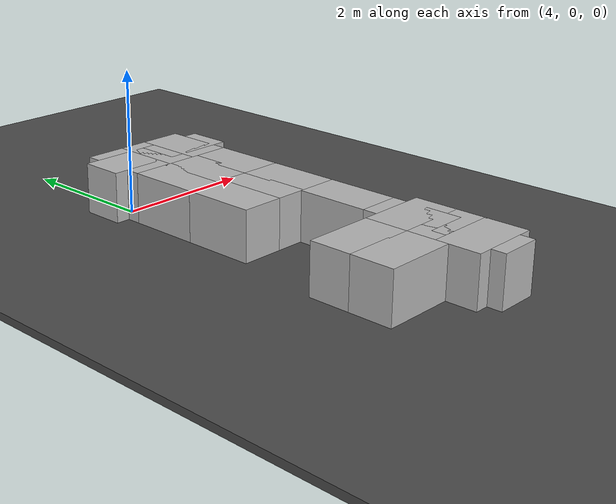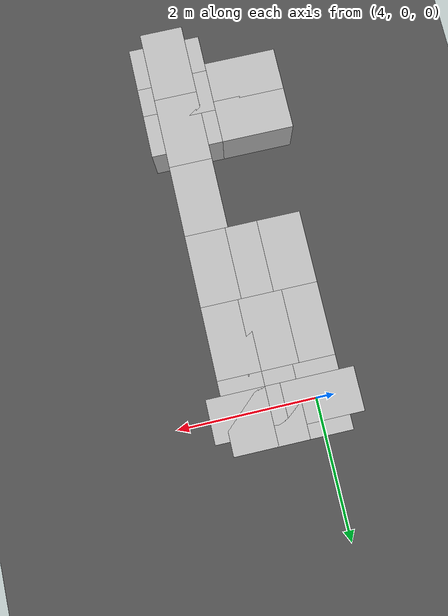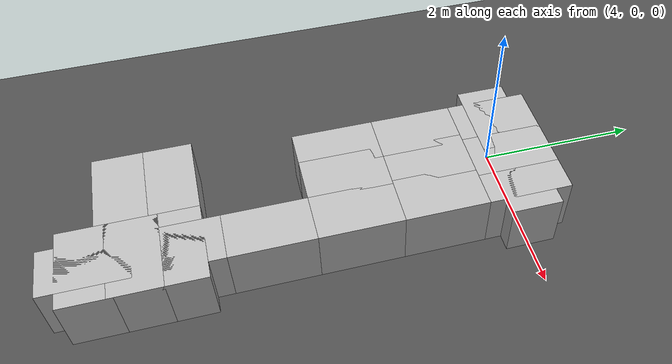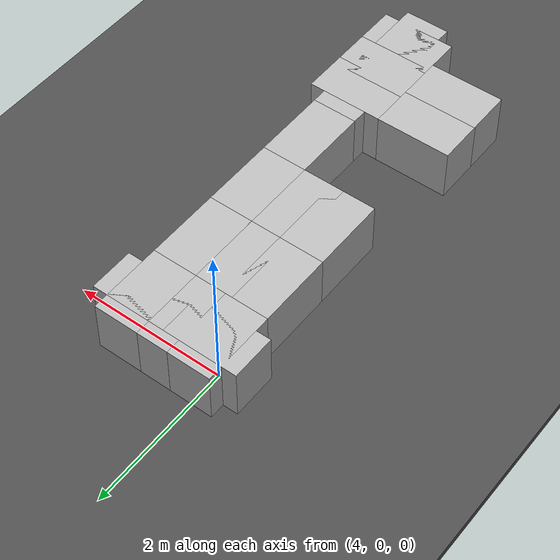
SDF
<sdf version="1.4">
 <world name="default">
  <model name="ground_plane">
   <static>1</static>
   <link name="link">
    <collision name="collision">
     <geometry><plane><normal>0 0 1</normal><size>100 100</size></plane></geometry>
     <surface><friction><ode><mu>100</mu><mu2>50</mu2></ode></friction></surface>
    </collision>
    <visual name="visual">
     <cast_shadows>0</cast_shadows>
     <geometry><plane><normal>0 0 1</normal><size>100 100</size></plane></geometry>
     <material>
      <script><uri>file://media/materials/scripts/gazebo.material</uri><name>Gazebo/Grey</name></script>
     </material>
    </visual>
    <velocity_decay><linear>0</linear><angular>0</angular></velocity_decay>
   </link>
  </model>
  <model name="wall_3">
   <static>1</static>
   <link name="link">
    <pose>0 0 0.25 0 -0 0</pose>
    <collision name="collision"><geometry><box><size>1 0.6 1</size></box></geometry></collision>
    <visual name="visual">
     <geometry>
      <mesh><uri>model://brick_box_3x1x3/meshes/simple_box.dae</uri><scale>1 0.6 1</scale></mesh>
     </geometry>
     <material>
      <script>
       <uri>model://brick_box_3x1x3/materials/scripts</uri>
       <uri>model://brick_box_3x1x3/materials/textures</uri>
       <name>BrickBox/Diffuse</name>
      </script>
     </material>
    </visual>
    <velocity_decay><linear>0</linear><angular>0</angular></velocity_decay>
   </link>
   <pose>5 -5 0 0 -0 0</pose>
  </model>
  <model name="wall_4">
   <static>1</static>
   <link name="link">
    <pose>0 0 0.25 0 -0 0</pose>
    <collision name="collision"><geometry><box><size>0.6 1 1</size></box></geometry></collision>
    <visual name="visual">
     <geometry>
      <mesh><uri>model://brick_box_3x1x3/meshes/simple_box.dae</uri><scale>0.6 1 1</scale></mesh>
     </geometry>
     <material>
      <script>
       <uri>model://brick_box_3x1x3/materials/scripts</uri>
       <uri>model://brick_box_3x1x3/materials/textures</uri>
       <name>BrickBox/Diffuse</name>
      </script>
     </material>
    </visual>
    <velocity_decay><linear>0</linear><angular>0</angular></velocity_decay>
   </link>
   <pose>5 -5 0 0 -0 0</pose>
  </model>
  <model name="wall_5">
   <static>1</static>
   <link name="link">
    <pose>0 0 0.25 0 -0 0</pose>
    <collision name="collision"><geometry><box><size>0.6 1 1</size></box></geometry></collision>
    <visual name="visual">
     <geometry>
      <mesh><uri>model://brick_box_3x1x3/meshes/simple_box.dae</uri><scale>0.6 1 1</scale></mesh>
     </geometry>
     <material>
      <script>
       <uri>model://brick_box_3x1x3/materials/scripts</uri>
       <uri>model://brick_box_3x1x3/materials/textures</uri>
       <name>BrickBox/Diffuse</name>
      </script>
     </material>
    </visual>
    <velocity_decay><linear>0</linear><angular>0</angular></velocity_decay>
   </link>
   <pose>5 -4 0 0 -0 0</pose>
  </model>
  <model name="wall_13">
   <static>1</static>
   <link name="link">
    <pose>0 0 0.25 0 -0 0</pose>
    <collision name="collision"><geometry><box><size>0.6 1 1</size></box></geometry></collision>
    <visual name="visual">
     <geometry>
      <mesh><uri>model://brick_box_3x1x3/meshes/simple_box.dae</uri><scale>0.6 1 1</scale></mesh>
     </geometry>
     <material>
      <script>
       <uri>model://brick_box_3x1x3/materials/scripts</uri>
       <uri>model://brick_box_3x1x3/materials/textures</uri>
       <name>BrickBox/Diffuse</name>
      </script>
     </material>
    </visual>
    <velocity_decay><linear>0</linear><angular>0</angular></velocity_decay>
   </link>
   <pose>5 -3 0 0 -0 0</pose>
  </model>
  <model name="wall_14">
   <static>1</static>
   <link name="link">
    <pose>0 0 0.25 0 -0 0</pose>
    <collision name="collision"><geometry><box><size>0.6 1 1</size></box></geometry></collision>
    <visual name="visual">
     <geometry>
      <mesh><uri>model://brick_box_3x1x3/meshes/simple_box.dae</uri><scale>0.6 1 1</scale></mesh>
     </geometry>
     <material>
      <script>
       <uri>model://brick_box_3x1x3/materials/scripts</uri>
       <uri>model://brick_box_3x1x3/materials/textures</uri>
       <name>BrickBox/Diffuse</name>
      </script>
     </material>
    </visual>
    <velocity_decay><linear>0</linear><angular>0</angular></velocity_decay>
   </link>
   <pose>5 -2 0 0 -0 0</pose>
  </model>
  <model name="wall_15">
   <static>1</static>
   <link name="link">
    <pose>0 0 0.25 0 -0 0</pose>
    <collision name="collision"><geometry><box><size>0.6 1 1</size></box></geometry></collision>
    <visual name="visual">
     <geometry>
      <mesh><uri>model://brick_box_3x1x3/meshes/simple_box.dae</uri><scale>0.6 1 1</scale></mesh>
     </geometry>
     <material>
      <script>
       <uri>model://brick_box_3x1x3/materials/scripts</uri>
       <uri>model://brick_box_3x1x3/materials/textures</uri>
       <name>BrickBox/Diffuse</name>
      </script>
     </material>
    </visual>
    <velocity_decay><linear>0</linear><angular>0</angular></velocity_decay>
   </link>
   <pose>5 -1 0 0 -0 0</pose>
  </model>
  <model name="wall_16">
   <static>1</static>
   <link name="link">
    <pose>0 0 0.25 0 -0 0</pose>
    <collision name="collision"><geometry><box><size>0.6 1 1</size></box></geometry></collision>
    <visual name="visual">
     <geometry>
      <mesh><uri>model://brick_box_3x1x3/meshes/simple_box.dae</uri><scale>0.6 1 1</scale></mesh>
     </geometry>
     <material>
      <script>
       <uri>model://brick_box_3x1x3/materials/scripts</uri>
       <uri>model://brick_box_3x1x3/materials/textures</uri>
       <name>BrickBox/Diffuse</name>
      </script>
     </material>
    </visual>
    <velocity_decay><linear>0</linear><angular>0</angular></velocity_decay>
   </link>
   <pose>5 0 0 0 -0 0</pose>
  </model>
  <model name="wall_46">
   <static>1</static>
   <link name="link">
    <pose>0 0 0.25 0 -0 0</pose>
    <collision name="collision"><geometry><box><size>1 0.6 1</size></box></geometry></collision>
    <visual name="visual">
     <geometry>
      <mesh><uri>model://brick_box_3x1x3/meshes/simple_box.dae</uri><scale>1 0.6 1</scale></mesh>
     </geometry>
     <material>
      <script>
       <uri>model://brick_box_3x1x3/materials/scripts</uri>
       <uri>model://brick_box_3x1x3/materials/textures</uri>
       <name>BrickBox/Diffuse</name>
      </script>
     </material>
    </visual>
    <velocity_decay><linear>0</linear><angular>0</angular></velocity_decay>
   </link>
   <pose>5 0 0 0 -0 0</pose>
  </model>
  <model name="wall_47">
   <static>1</static>
   <link name="link">
    <pose>0 0 0.25 0 -0 0</pose>
    <collision name="collision"><geometry><box><size>1 0.6 1</size></box></geometry></collision>
    <visual name="visual">
     <geometry>
      <mesh><uri>model://brick_box_3x1x3/meshes/simple_box.dae</uri><scale>1 0.6 1</scale></mesh>
     </geometry>
     <material>
      <script>
       <uri>model://brick_box_3x1x3/materials/scripts</uri>
       <uri>model://brick_box_3x1x3/materials/textures</uri>
       <name>BrickBox/Diffuse</name>
      </script>
     </material>
    </visual>
    <velocity_decay><linear>0</linear><angular>0</angular></velocity_decay>
   </link>
   <pose>4 0 0 0 -0 0</pose>
  </model>
  <model name="wall_84">
   <static>1</static>
   <link name="link">
    <pose>0 0 0.25 0 -0 0</pose>
    <collision name="collision"><geometry><box><size>0.6 1 1</size></box></geometry></collision>
    <visual name="visual">
     <geometry>
      <mesh><uri>model://brick_box_3x1x3/meshes/simple_box.dae</uri><scale>0.6 1 1</scale></mesh>
     </geometry>
     <material>
      <script>
       <uri>model://brick_box_3x1x3/materials/scripts</uri>
       <uri>model://brick_box_3x1x3/materials/textures</uri>
       <name>BrickBox/Diffuse</name>
      </script>
     </material>
    </visual>
    <velocity_decay><linear>0</linear><angular>0</angular></velocity_decay>
   </link>
   <pose>4 0 0 0 -0 0</pose>
  </model>
  <model name="wall_85">
   <static>1</static>
   <link name="link">
    <pose>0 0 0.25 0 -0 0</pose>
    <collision name="collision"><geometry><box><size>0.6 1 1</size></box></geometry></collision>
    <visual name="visual">
     <geometry>
      <mesh><uri>model://brick_box_3x1x3/meshes/simple_box.dae</uri><scale>0.6 1 1</scale></mesh>
     </geometry>
     <material>
      <script>
       <uri>model://brick_box_3x1x3/materials/scripts</uri>
       <uri>model://brick_box_3x1x3/materials/textures</uri>
       <name>BrickBox/Diffuse</name>
      </script>
     </material>
    </visual>
    <velocity_decay><linear>0</linear><angular>0</angular></velocity_decay>
   </link>
   <pose>4 -1 0 0 -0 0</pose>
  </model>
  <model name="wall_107">
   <static>1</static>
   <link name="link">
    <pose>0 0 0.25 0 -0 0</pose>
    <collision name="collision"><geometry><box><size>0.6 1 1</size></box></geometry></collision>
    <visual name="visual">
     <geometry>
      <mesh><uri>model://brick_box_3x1x3/meshes/simple_box.dae</uri><scale>0.6 1 1</scale></mesh>
     </geometry>
     <material>
      <script>
       <uri>model://brick_box_3x1x3/materials/scripts</uri>
       <uri>model://brick_box_3x1x3/materials/textures</uri>
       <name>BrickBox/Diffuse</name>
      </script>
     </material>
    </visual>
    <velocity_decay><linear>0</linear><angular>0</angular></velocity_decay>
   </link>
   <pose>4.49088 -1 0 0 -0 0</pose>
  </model>
  <model name="wall_108">
   <static>1</static>
   <link name="link">
    <pose>0 0 0.25 0 -0 0</pose>
    <collision name="collision"><geometry><box><size>0.6 1 1</size></box></geometry></collision>
    <visual name="visual">
     <geometry>
      <mesh><uri>model://brick_box_3x1x3/meshes/simple_box.dae</uri><scale>0.6 1 1</scale></mesh>
     </geometry>
     <material>
      <script>
       <uri>model://brick_box_3x1x3/materials/scripts</uri>
       <uri>model://brick_box_3x1x3/materials/textures</uri>
       <name>BrickBox/Diffuse</name>
      </script>
     </material>
    </visual>
    <velocity_decay><linear>0</linear><angular>0</angular></velocity_decay>
   </link>
   <pose>4.58016 0 0 0 -0 0</pose>
  </model>
  <model name="wall_120">
   <static>1</static>
   <link name="link">
    <pose>0 0 0.25 0 -0 0</pose>
    <collision name="collision"><geometry><box><size>1 0.6 1</size></box></geometry></collision>
    <visual name="visual">
     <geometry>
      <mesh><uri>model://brick_box_3x1x3/meshes/simple_box.dae</uri><scale>1 0.6 1</scale></mesh>
     </geometry>
     <material>
      <script>
       <uri>model://brick_box_3x1x3/materials/scripts</uri>
       <uri>model://brick_box_3x1x3/materials/textures</uri>
       <name>BrickBox/Diffuse</name>
      </script>
     </material>
    </visual>
    <velocity_decay><linear>0</linear><angular>0</angular></velocity_decay>
   </link>
   <pose>4 -4 0 0 -0 0</pose>
  </model>
  <model name="wall_121">
   <static>1</static>
   <link name="link">
    <pose>0 0 0.25 0 -0 0</pose>
    <collision name="collision"><geometry><box><size>1 0.6 1</size></box></geometry></collision>
    <visual name="visual">
     <geometry>
      <mesh><uri>model://brick_box_3x1x3/meshes/simple_box.dae</uri><scale>1 0.6 1</scale></mesh>
     </geometry>
     <material>
      <script>
       <uri>model://brick_box_3x1x3/materials/scripts</uri>
       <uri>model://brick_box_3x1x3/materials/textures</uri>
       <name>BrickBox/Diffuse</name>
      </script>
     </material>
    </visual>
    <velocity_decay><linear>0</linear><angular>0</angular></velocity_decay>
   </link>
   <pose>4 -4.57816 0 0 -0 0</pose>
  </model>
  <model name="wall_122">
   <static>1</static>
   <link name="link">
    <pose>0 0 0.25 0 -0 0</pose>
    <collision name="collision"><geometry><box><size>1 0.6 1</size></box></geometry></collision>
    <visual name="visual">
     <geometry>
      <mesh><uri>model://brick_box_3x1x3/meshes/simple_box.dae</uri><scale>1 0.6 1</scale></mesh>
     </geometry>
     <material>
      <script>
       <uri>model://brick_box_3x1x3/materials/scripts</uri>
       <uri>model://brick_box_3x1x3/materials/textures</uri>
       <name>BrickBox/Diffuse</name>
      </script>
     </material>
    </visual>
    <velocity_decay><linear>0</linear><angular>0</angular></velocity_decay>
   </link>
   <pose>5 -4 0 0 -0 0</pose>
  </model>
  <model name="wall_123">
   <static>1</static>
   <link name="link">
    <pose>0 0 0.25 0 -0 0</pose>
    <collision name="collision"><geometry><box><size>1 0.6 1</size></box></geometry></collision>
    <visual name="visual">
     <geometry>
      <mesh><uri>model://brick_box_3x1x3/meshes/simple_box.dae</uri><scale>1 0.6 1</scale></mesh>
     </geometry>
     <material>
      <script>
       <uri>model://brick_box_3x1x3/materials/scripts</uri>
       <uri>model://brick_box_3x1x3/materials/textures</uri>
       <name>BrickBox/Diffuse</name>
      </script>
     </material>
    </visual>
    <velocity_decay><linear>0</linear><angular>0</angular></velocity_decay>
   </link>
   <pose>5 -4.47642 0 0 -0 0</pose>
  </model>
  <model name="wall_141">
   <static>1</static>
   <link name="link">
    <pose>0 0 0.25 0 -0 0</pose>
    <collision name="collision"><geometry><box><size>0.6 1 1</size></box></geometry></collision>
    <visual name="visual">
     <geometry>
      <mesh><uri>model://brick_box_3x1x3/meshes/simple_box.dae</uri><scale>0.6 1 1</scale></mesh>
     </geometry>
     <material>
      <script>
       <uri>model://brick_box_3x1x3/materials/scripts</uri>
       <uri>model://brick_box_3x1x3/materials/textures</uri>
       <name>BrickBox/Diffuse</name>
      </script>
     </material>
    </visual>
    <velocity_decay><linear>0</linear><angular>0</angular></velocity_decay>
   </link>
   <pose>4 -2 0 0 -0 0</pose>
  </model>
  <model name="wall_142">
   <static>1</static>
   <link name="link">
    <pose>0 0 0.25 0 -0 0</pose>
    <collision name="collision"><geometry><box><size>0.6 1 1</size></box></geometry></collision>
    <visual name="visual">
     <geometry>
      <mesh><uri>model://brick_box_3x1x3/meshes/simple_box.dae</uri><scale>0.6 1 1</scale></mesh>
     </geometry>
     <material>
      <script>
       <uri>model://brick_box_3x1x3/materials/scripts</uri>
       <uri>model://brick_box_3x1x3/materials/textures</uri>
       <name>BrickBox/Diffuse</name>
      </script>
     </material>
    </visual>
    <velocity_decay><linear>0</linear><angular>0</angular></velocity_decay>
   </link>
   <pose>4.44193 -2 0 0 -0 0</pose>
  </model>
  <model name="asphalt_plane">
   <static>1</static>
   <link name="link">
    <collision name="collision"><geometry><box><size>20 20 0.1</size></box></geometry></collision>
    <visual name="visual">
     <cast_shadows>0</cast_shadows>
     <geometry><box><size>20 20 0.1</size></box></geometry>
     <material>
      <script>
       <uri>model://asphalt_plane/materials/scripts</uri>
       <uri>model://asphalt_plane/materials/textures</uri>
       <name>vrc/asphalt</name>
      </script>
     </material>
    </visual>
    <velocity_decay><linear>0</linear><angular>0</angular></velocity_decay>
   </link>
  </model>
 </world>
</sdf>
